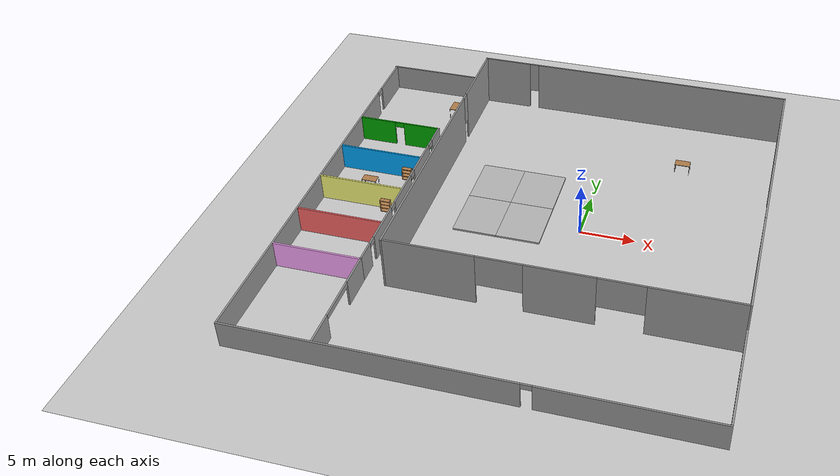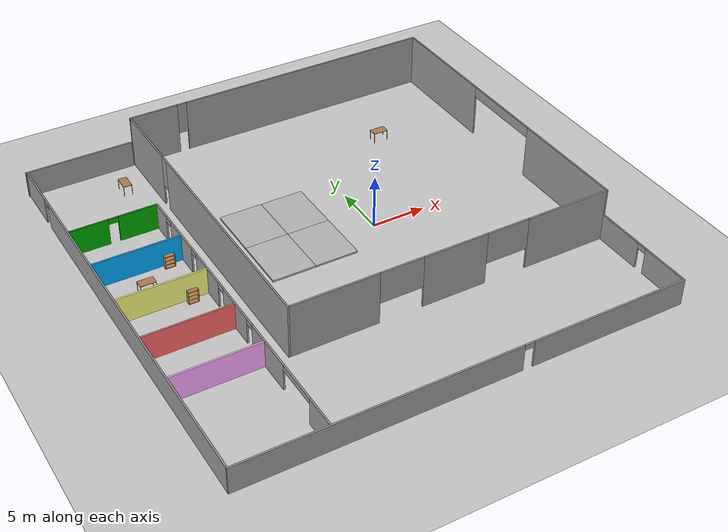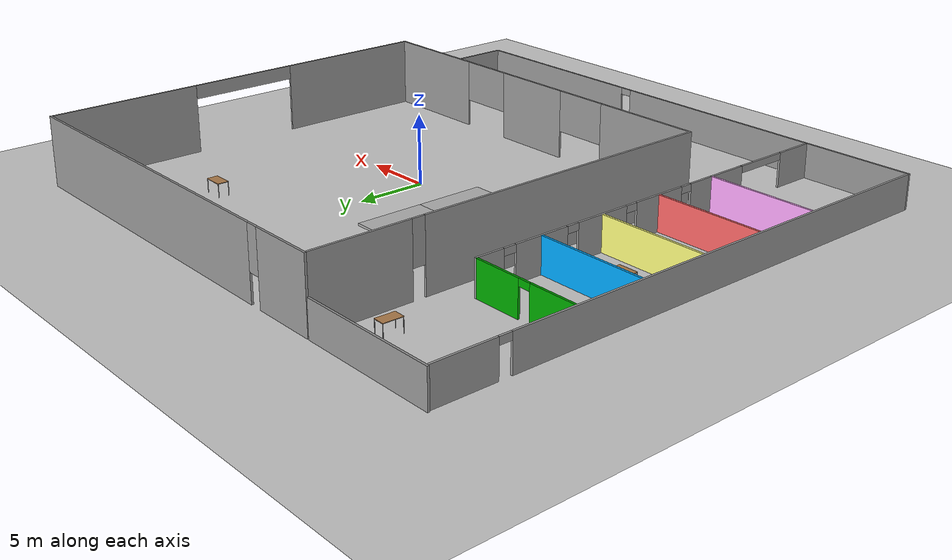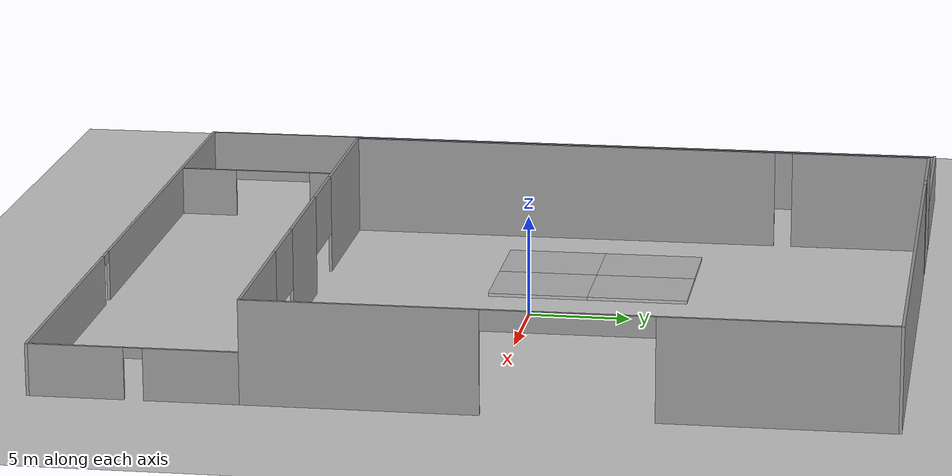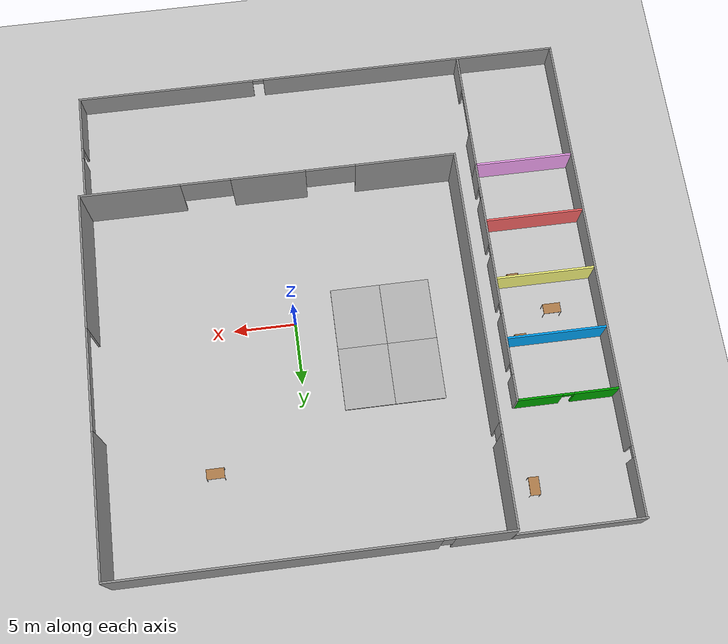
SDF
<sdf version="1.6">
 <world name="default">
  <model name="ground_plane">
   <static>1</static>
   <link name="link">
    <collision name="collision">
     <geometry><plane><normal>0 0 1</normal><size>100 100</size></plane></geometry>
     <surface><friction><ode><mu>100</mu><mu2>50</mu2></ode></friction></surface>
    </collision>
    <visual name="visual">
     <cast_shadows>0</cast_shadows>
     <geometry><plane><normal>0 0 1</normal><size>100 100</size></plane></geometry>
     <material>
      <script><uri>file://media/materials/scripts/gazebo.material</uri><name>Gazebo/Grey</name></script>
     </material>
    </visual>
   </link>
  </model>
  <model name="robotics_lab">
   <pose>-4.24917 -1.0775 0 0 -0 0</pose>
   <link name="Wall_0">
    <pose>5.0405 20 0 0 -0 0</pose>
    <visual name="Wall_0_Visual_0">
     <pose>-12.7625 0 2.5 0 -0 0</pose>
     <geometry><box><size>4.625 0.15 5</size></box></geometry>
     <material>
      <script><uri>file://media/materials/scripts/gazebo.material</uri><name>Gazebo/Grey</name></script>
      <ambient>0 0 0 1</ambient>
     </material>
    </visual>
    <collision name="Wall_0_Collision_0">
     <geometry><box><size>4.625 0.15 5</size></box></geometry>
     <pose>-12.7625 0 2.5 0 -0 0</pose>
    </collision>
    <visual name="Wall_0_Visual_1">
     <pose>2.7625 0 2.5 0 -0 0</pose>
     <geometry><box><size>24.625 0.15 5</size></box></geometry>
     <material>
      <script><uri>file://media/materials/scripts/gazebo.material</uri><name>Gazebo/Grey</name></script>
      <ambient>0 0 0 1</ambient>
     </material>
    </visual>
    <collision name="Wall_0_Collision_1">
     <geometry><box><size>24.625 0.15 5</size></box></geometry>
     <pose>2.7625 0 2.5 0 -0 0</pose>
    </collision>
    <visual name="Wall_0_Visual_2">
     <pose>-10 0 3.5 0 -0 0</pose>
     <geometry><box><size>0.9 0.15 3</size></box></geometry>
     <material>
      <script><uri>file://media/materials/scripts/gazebo.material</uri><name>Gazebo/Grey</name></script>
      <ambient>0 0 0 1</ambient>
     </material>
    </visual>
    <collision name="Wall_0_Collision_2">
     <geometry><box><size>0.9 0.15 3</size></box></geometry>
     <pose>-10 0 3.5 0 -0 0</pose>
    </collision>
   </link>
   <link name="Wall_10">
    <pose>-19.9595 0 0 0 0 -1.5708</pose>
    <visual name="Wall_10_Visual_0">
     <pose>-17.6875 0 1.25 0 -0 0</pose>
     <geometry><box><size>4.475 0.15 2.5</size></box></geometry>
     <material>
      <script><uri>file://media/materials/scripts/gazebo.material</uri><name>Gazebo/Grey</name></script>
      <ambient>1 1 1 1</ambient>
     </material>
    </visual>
    <collision name="Wall_10_Collision_0">
     <geometry><box><size>4.475 0.15 2.5</size></box></geometry>
     <pose>-17.6875 0 1.25 0 -0 0</pose>
    </collision>
    <visual name="Wall_10_Visual_1">
     <pose>2.6875 0 1.25 0 -0 0</pose>
     <geometry><box><size>34.475 0.15 2.5</size></box></geometry>
     <material>
      <script><uri>file://media/materials/scripts/gazebo.material</uri><name>Gazebo/Grey</name></script>
      <ambient>1 1 1 1</ambient>
     </material>
    </visual>
    <collision name="Wall_10_Collision_1">
     <geometry><box><size>34.475 0.15 2.5</size></box></geometry>
     <pose>2.6875 0 1.25 0 -0 0</pose>
    </collision>
    <visual name="Wall_10_Visual_2">
     <pose>-15 0 2.25 0 -0 0</pose>
     <geometry><box><size>0.9 0.15 0.5</size></box></geometry>
     <material>
      <script><uri>file://media/materials/scripts/gazebo.material</uri><name>Gazebo/Grey</name></script>
      <ambient>1 1 1 1</ambient>
     </material>
    </visual>
    <collision name="Wall_10_Collision_2">
     <geometry><box><size>0.9 0.15 0.5</size></box></geometry>
     <pose>-15 0 2.25 0 -0 0</pose>
    </collision>
   </link>
   <link name="Wall_12">
    <pose>0.040499 -20 0 0 -0 0</pose>
    <visual name="Wall_12_Visual_0">
     <pose>-7.7625 0 1.25 0 -0 0</pose>
     <geometry><box><size>24.625 0.15 2.5</size></box></geometry>
     <material>
      <script><uri>file://media/materials/scripts/gazebo.material</uri><name>Gazebo/Grey</name></script>
      <ambient>1 1 1 1</ambient>
     </material>
    </visual>
    <collision name="Wall_12_Collision_0">
     <geometry><box><size>24.625 0.15 2.5</size></box></geometry>
     <pose>-7.7625 0 1.25 0 -0 0</pose>
    </collision>
    <visual name="Wall_12_Visual_1">
     <pose>12.7625 0 1.25 0 -0 0</pose>
     <geometry><box><size>14.625 0.15 2.5</size></box></geometry>
     <material>
      <script><uri>file://media/materials/scripts/gazebo.material</uri><name>Gazebo/Grey</name></script>
      <ambient>1 1 1 1</ambient>
     </material>
    </visual>
    <collision name="Wall_12_Collision_1">
     <geometry><box><size>14.625 0.15 2.5</size></box></geometry>
     <pose>12.7625 0 1.25 0 -0 0</pose>
    </collision>
    <visual name="Wall_12_Visual_2">
     <pose>5 0 2.25 0 -0 0</pose>
     <geometry><box><size>0.9 0.15 0.5</size></box></geometry>
     <material>
      <script><uri>file://media/materials/scripts/gazebo.material</uri><name>Gazebo/Grey</name></script>
      <ambient>1 1 1 1</ambient>
     </material>
    </visual>
    <collision name="Wall_12_Collision_2">
     <geometry><box><size>0.9 0.15 0.5</size></box></geometry>
     <pose>5 0 2.25 0 -0 0</pose>
    </collision>
   </link>
   <link name="Wall_14">
    <pose>20.0405 -15 0 0 0 -1.5708</pose>
    <visual name="Wall_14_Visual_0">
     <pose>-2.6875 0 1.25 0 -0 0</pose>
     <geometry><box><size>4.475 0.15 2.5</size></box></geometry>
     <material>
      <script><uri>file://media/materials/scripts/gazebo.material</uri><name>Gazebo/Grey</name></script>
      <ambient>1 1 1 1</ambient>
     </material>
    </visual>
    <collision name="Wall_14_Collision_0">
     <geometry><box><size>4.475 0.15 2.5</size></box></geometry>
     <pose>-2.6875 0 1.25 0 -0 0</pose>
    </collision>
    <visual name="Wall_14_Visual_1">
     <pose>2.6875 0 1.25 0 -0 0</pose>
     <geometry><box><size>4.475 0.15 2.5</size></box></geometry>
     <material>
      <script><uri>file://media/materials/scripts/gazebo.material</uri><name>Gazebo/Grey</name></script>
      <ambient>1 1 1 1</ambient>
     </material>
    </visual>
    <collision name="Wall_14_Collision_1">
     <geometry><box><size>4.475 0.15 2.5</size></box></geometry>
     <pose>2.6875 0 1.25 0 -0 0</pose>
    </collision>
    <visual name="Wall_14_Visual_2">
     <pose>0 0 2.25 0 -0 0</pose>
     <geometry><box><size>0.9 0.15 0.5</size></box></geometry>
     <material>
      <script><uri>file://media/materials/scripts/gazebo.material</uri><name>Gazebo/Grey</name></script>
      <ambient>1 1 1 1</ambient>
     </material>
    </visual>
    <collision name="Wall_14_Collision_2">
     <geometry><box><size>0.9 0.15 0.5</size></box></geometry>
     <pose>0 0 2.25 0 -0 0</pose>
    </collision>
   </link>
   <link name="Wall_16">
    <pose>-15.9595 10 0 0 -0 0</pose>
    <visual name="Wall_16_Visual_0">
     <pose>-2.1875 0 1.25 0 -0 0</pose>
     <geometry><box><size>3.475 0.15 2.5</size></box></geometry>
     <material>
      <script><uri>file://media/materials/scripts/gazebo.material</uri><name>Gazebo/Grey</name></script>
      <ambient>0 0.666667 0 1</ambient>
     </material>
    </visual>
    <collision name="Wall_16_Collision_0">
     <geometry><box><size>3.475 0.15 2.5</size></box></geometry>
     <pose>-2.1875 0 1.25 0 -0 0</pose>
    </collision>
    <visual name="Wall_16_Visual_1">
     <pose>2.1875 0 1.25 0 -0 0</pose>
     <geometry><box><size>3.475 0.15 2.5</size></box></geometry>
     <material>
      <script><uri>file://media/materials/scripts/gazebo.material</uri><name>Gazebo/Grey</name></script>
      <ambient>0 0.666667 0 1</ambient>
     </material>
    </visual>
    <collision name="Wall_16_Collision_1">
     <geometry><box><size>3.475 0.15 2.5</size></box></geometry>
     <pose>2.1875 0 1.25 0 -0 0</pose>
    </collision>
    <visual name="Wall_16_Visual_2">
     <pose>-0 0 2.25 0 -0 0</pose>
     <geometry><box><size>0.9 0.15 0.5</size></box></geometry>
     <material>
      <script><uri>file://media/materials/scripts/gazebo.material</uri><name>Gazebo/Grey</name></script>
      <ambient>0 0.666667 0 1</ambient>
     </material>
    </visual>
    <collision name="Wall_16_Collision_2">
     <geometry><box><size>0.9 0.15 0.5</size></box></geometry>
     <pose>-0 0 2.25 0 -0 0</pose>
    </collision>
   </link>
   <link name="Wall_18">
    <collision name="Wall_18_Collision">
     <geometry><box><size>7.85 0.15 2.5</size></box></geometry>
     <pose>0 0 1.25 0 -0 0</pose>
    </collision>
    <visual name="Wall_18_Visual">
     <pose>0 0 1.25 0 -0 0</pose>
     <geometry><box><size>7.85 0.15 2.5</size></box></geometry>
     <material>
      <script><uri>file://media/materials/scripts/gazebo.material</uri><name>Gazebo/Grey</name></script>
      <ambient>0 0.666667 1 1</ambient>
     </material>
    </visual>
    <pose>-15.9595 5 0 0 -0 0</pose>
   </link>
   <link name="Wall_2">
    <pose>20.0405 4.925 0 0 0 -1.5708</pose>
    <visual name="Wall_2_Visual_0">
     <pose>-9.5375 0 2.5 0 -0 0</pose>
     <geometry><box><size>10.925 0.15 5</size></box></geometry>
     <material>
      <script><uri>file://media/materials/scripts/gazebo.material</uri><name>Gazebo/Grey</name></script>
      <ambient>0 0 0 1</ambient>
     </material>
    </visual>
    <collision name="Wall_2_Collision_0">
     <geometry><box><size>10.925 0.15 5</size></box></geometry>
     <pose>-9.5375 0 2.5 0 -0 0</pose>
    </collision>
    <visual name="Wall_2_Visual_1">
     <pose>9.4625 0 2.5 0 -0 0</pose>
     <geometry><box><size>11.075 0.15 5</size></box></geometry>
     <material>
      <script><uri>file://media/materials/scripts/gazebo.material</uri><name>Gazebo/Grey</name></script>
      <ambient>0 0 0 1</ambient>
     </material>
    </visual>
    <collision name="Wall_2_Collision_1">
     <geometry><box><size>11.075 0.15 5</size></box></geometry>
     <pose>9.4625 0 2.5 0 -0 0</pose>
    </collision>
    <visual name="Wall_2_Visual_2">
     <pose>-0.075 0 4.5 0 -0 0</pose>
     <geometry><box><size>8 0.15 1</size></box></geometry>
     <material>
      <script><uri>file://media/materials/scripts/gazebo.material</uri><name>Gazebo/Grey</name></script>
      <ambient>0 0 0 1</ambient>
     </material>
    </visual>
    <collision name="Wall_2_Collision_2">
     <geometry><box><size>8 0.15 1</size></box></geometry>
     <pose>-0.075 0 4.5 0 -0 0</pose>
    </collision>
   </link>
   <link name="Wall_20">
    <collision name="Wall_20_Collision">
     <geometry><box><size>7.85 0.15 2.5</size></box></geometry>
     <pose>0 0 1.25 0 -0 0</pose>
    </collision>
    <visual name="Wall_20_Visual">
     <pose>0 0 1.25 0 -0 0</pose>
     <geometry><box><size>7.85 0.15 2.5</size></box></geometry>
     <material>
      <script><uri>file://media/materials/scripts/gazebo.material</uri><name>Gazebo/Grey</name></script>
      <ambient>1 1 0.498039 1</ambient>
     </material>
    </visual>
    <pose>-15.9595 0 0 0 -0 0</pose>
   </link>
   <link name="Wall_22">
    <collision name="Wall_22_Collision">
     <geometry><box><size>7.85 0.15 2.5</size></box></geometry>
     <pose>0 0 1.25 0 -0 0</pose>
    </collision>
    <visual name="Wall_22_Visual">
     <pose>0 0 1.25 0 -0 0</pose>
     <geometry><box><size>7.85 0.15 2.5</size></box></geometry>
     <material>
      <script><uri>file://media/materials/scripts/gazebo.material</uri><name>Gazebo/Grey</name></script>
      <ambient>1 0.411765 0.411765 1</ambient>
     </material>
    </visual>
    <pose>-15.9595 -5 0 0 -0 0</pose>
   </link>
   <link name="Wall_24">
    <collision name="Wall_24_Collision">
     <geometry><box><size>7.85 0.15 2.5</size></box></geometry>
     <pose>0 0 1.25 0 -0 0</pose>
    </collision>
    <visual name="Wall_24_Visual">
     <pose>0 0 1.25 0 -0 0</pose>
     <geometry><box><size>7.85 0.15 2.5</size></box></geometry>
     <material>
      <script><uri>file://media/materials/scripts/gazebo.material</uri><name>Gazebo/Grey</name></script>
      <ambient>1 0.666667 1 1</ambient>
     </material>
    </visual>
    <pose>-15.9595 -10 0 0 -0 0</pose>
   </link>
   <link name="Wall_26">
    <pose>-11.9595 0 0 0 0 -1.5708</pose>
    <visual name="Wall_26_Visual_0">
     <pose>-9.0125 0 1.25 0 -0 0</pose>
     <geometry><box><size>2.125 0.15 2.5</size></box></geometry>
     <material>
      <script><uri>file://media/materials/scripts/gazebo.material</uri><name>Gazebo/Grey</name></script>
      <ambient>1 1 1 1</ambient>
     </material>
    </visual>
    <collision name="Wall_26_Collision_0">
     <geometry><box><size>2.125 0.15 2.5</size></box></geometry>
     <pose>-9.0125 0 1.25 0 -0 0</pose>
    </collision>
    <visual name="Wall_26_Visual_1">
     <pose>-5 0 1.25 0 -0 0</pose>
     <geometry><box><size>4.1 0.15 2.5</size></box></geometry>
     <material>
      <script><uri>file://media/materials/scripts/gazebo.material</uri><name>Gazebo/Grey</name></script>
      <ambient>1 1 1 1</ambient>
     </material>
    </visual>
    <collision name="Wall_26_Collision_1">
     <geometry><box><size>4.1 0.15 2.5</size></box></geometry>
     <pose>-5 0 1.25 0 -0 0</pose>
    </collision>
    <visual name="Wall_26_Visual_2">
     <pose>0 0 1.25 0 -0 0</pose>
     <geometry><box><size>4.1 0.15 2.5</size></box></geometry>
     <material>
      <script><uri>file://media/materials/scripts/gazebo.material</uri><name>Gazebo/Grey</name></script>
      <ambient>1 1 1 1</ambient>
     </material>
    </visual>
    <collision name="Wall_26_Collision_2">
     <geometry><box><size>4.1 0.15 2.5</size></box></geometry>
     <pose>0 0 1.25 0 -0 0</pose>
    </collision>
    <visual name="Wall_26_Visual_3">
     <pose>5 0 1.25 0 -0 0</pose>
     <geometry><box><size>4.1 0.15 2.5</size></box></geometry>
     <material>
      <script><uri>file://media/materials/scripts/gazebo.material</uri><name>Gazebo/Grey</name></script>
      <ambient>1 1 1 1</ambient>
     </material>
    </visual>
    <collision name="Wall_26_Collision_3">
     <geometry><box><size>4.1 0.15 2.5</size></box></geometry>
     <pose>5 0 1.25 0 -0 0</pose>
    </collision>
    <visual name="Wall_26_Visual_4">
     <pose>9.0125 0 1.25 0 -0 0</pose>
     <geometry><box><size>2.125 0.15 2.5</size></box></geometry>
     <material>
      <script><uri>file://media/materials/scripts/gazebo.material</uri><name>Gazebo/Grey</name></script>
      <ambient>1 1 1 1</ambient>
     </material>
    </visual>
    <collision name="Wall_26_Collision_4">
     <geometry><box><size>2.125 0.15 2.5</size></box></geometry>
     <pose>9.0125 0 1.25 0 -0 0</pose>
    </collision>
    <visual name="Wall_26_Visual_5">
     <pose>-7.5 0 2.25 0 -0 0</pose>
     <geometry><box><size>0.9 0.15 0.5</size></box></geometry>
     <material>
      <script><uri>file://media/materials/scripts/gazebo.material</uri><name>Gazebo/Grey</name></script>
      <ambient>1 1 1 1</ambient>
     </material>
    </visual>
    <collision name="Wall_26_Collision_5">
     <geometry><box><size>0.9 0.15 0.5</size></box></geometry>
     <pose>-7.5 0 2.25 0 -0 0</pose>
    </collision>
    <visual name="Wall_26_Visual_6">
     <pose>-2.5 0 2.25 0 -0 0</pose>
     <geometry><box><size>0.9 0.15 0.5</size></box></geometry>
     <material>
      <script><uri>file://media/materials/scripts/gazebo.material</uri><name>Gazebo/Grey</name></script>
      <ambient>1 1 1 1</ambient>
     </material>
    </visual>
    <collision name="Wall_26_Collision_6">
     <geometry><box><size>0.9 0.15 0.5</size></box></geometry>
     <pose>-2.5 0 2.25 0 -0 0</pose>
    </collision>
    <visual name="Wall_26_Visual_7">
     <pose>2.5 0 2.25 0 -0 0</pose>
     <geometry><box><size>0.9 0.15 0.5</size></box></geometry>
     <material>
      <script><uri>file://media/materials/scripts/gazebo.material</uri><name>Gazebo/Grey</name></script>
      <ambient>1 1 1 1</ambient>
     </material>
    </visual>
    <collision name="Wall_26_Collision_7">
     <geometry><box><size>0.9 0.15 0.5</size></box></geometry>
     <pose>2.5 0 2.25 0 -0 0</pose>
    </collision>
    <visual name="Wall_26_Visual_8">
     <pose>7.5 0 2.25 0 -0 0</pose>
     <geometry><box><size>0.9 0.15 0.5</size></box></geometry>
     <material>
      <script><uri>file://media/materials/scripts/gazebo.material</uri><name>Gazebo/Grey</name></script>
      <ambient>1 1 1 1</ambient>
     </material>
    </visual>
    <collision name="Wall_26_Collision_8">
     <geometry><box><size>0.9 0.15 0.5</size></box></geometry>
     <pose>7.5 0 2.25 0 -0 0</pose>
    </collision>
   </link>
   <link name="Wall_30">
    <pose>-11.9595 -14.925 0 0 0 -1.5708</pose>
    <visual name="Wall_30_Visual_0">
     <pose>-3.4625 0 1.25 0 -0 0</pose>
     <geometry><box><size>3.075 0.15 2.5</size></box></geometry>
     <material>
      <script><uri>file://media/materials/scripts/gazebo.material</uri><name>Gazebo/Grey</name></script>
      <ambient>1 1 1 1</ambient>
     </material>
    </visual>
    <collision name="Wall_30_Collision_0">
     <geometry><box><size>3.075 0.15 2.5</size></box></geometry>
     <pose>-3.4625 0 1.25 0 -0 0</pose>
    </collision>
    <visual name="Wall_30_Visual_1">
     <pose>3.5375 0 1.25 0 -0 0</pose>
     <geometry><box><size>2.925 0.15 2.5</size></box></geometry>
     <material>
      <script><uri>file://media/materials/scripts/gazebo.material</uri><name>Gazebo/Grey</name></script>
      <ambient>1 1 1 1</ambient>
     </material>
    </visual>
    <collision name="Wall_30_Collision_1">
     <geometry><box><size>2.925 0.15 2.5</size></box></geometry>
     <pose>3.5375 0 1.25 0 -0 0</pose>
    </collision>
    <visual name="Wall_30_Visual_2">
     <pose>0.075 0 2.25 0 -0 0</pose>
     <geometry><box><size>4 0.15 0.5</size></box></geometry>
     <material>
      <script><uri>file://media/materials/scripts/gazebo.material</uri><name>Gazebo/Grey</name></script>
      <ambient>1 1 1 1</ambient>
     </material>
    </visual>
    <collision name="Wall_30_Collision_2">
     <geometry><box><size>4 0.15 0.5</size></box></geometry>
     <pose>0.075 0 2.25 0 -0 0</pose>
    </collision>
   </link>
   <link name="Wall_4">
    <pose>5.0405 -10 0 0 -0 0</pose>
    <visual name="Wall_4_Visual_0">
     <pose>-10.9625 0 2.5 0 -0 0</pose>
     <geometry><box><size>7.925 0.15 5</size></box></geometry>
     <material>
      <script><uri>file://media/materials/scripts/gazebo.material</uri><name>Gazebo/Grey</name></script>
      <ambient>0 0 0 1</ambient>
     </material>
    </visual>
    <collision name="Wall_4_Collision_0">
     <geometry><box><size>7.925 0.15 5</size></box></geometry>
     <pose>-10.9625 0 2.5 0 -0 0</pose>
    </collision>
    <visual name="Wall_4_Visual_1">
     <pose>0 0 2.5 0 -0 0</pose>
     <geometry><box><size>6 0.15 5</size></box></geometry>
     <material>
      <script><uri>file://media/materials/scripts/gazebo.material</uri><name>Gazebo/Grey</name></script>
      <ambient>0 0 0 1</ambient>
     </material>
    </visual>
    <collision name="Wall_4_Collision_1">
     <geometry><box><size>6 0.15 5</size></box></geometry>
     <pose>0 0 2.5 0 -0 0</pose>
    </collision>
    <visual name="Wall_4_Visual_2">
     <pose>10.9625 0 2.5 0 -0 0</pose>
     <geometry><box><size>7.925 0.15 5</size></box></geometry>
     <material>
      <script><uri>file://media/materials/scripts/gazebo.material</uri><name>Gazebo/Grey</name></script>
      <ambient>0 0 0 1</ambient>
     </material>
    </visual>
    <collision name="Wall_4_Collision_2">
     <geometry><box><size>7.925 0.15 5</size></box></geometry>
     <pose>10.9625 0 2.5 0 -0 0</pose>
    </collision>
    <visual name="Wall_4_Visual_3">
     <pose>-5 0 3.5 0 -0 0</pose>
     <geometry><box><size>4 0.15 3</size></box></geometry>
     <material>
      <script><uri>file://media/materials/scripts/gazebo.material</uri><name>Gazebo/Grey</name></script>
      <ambient>0 0 0 1</ambient>
     </material>
    </visual>
    <collision name="Wall_4_Collision_3">
     <geometry><box><size>4 0.15 3</size></box></geometry>
     <pose>-5 0 3.5 0 -0 0</pose>
    </collision>
    <visual name="Wall_4_Visual_4">
     <pose>5 0 3.5 0 -0 0</pose>
     <geometry><box><size>4 0.15 3</size></box></geometry>
     <material>
      <script><uri>file://media/materials/scripts/gazebo.material</uri><name>Gazebo/Grey</name></script>
      <ambient>0 0 0 1</ambient>
     </material>
    </visual>
    <collision name="Wall_4_Collision_4">
     <geometry><box><size>4 0.15 3</size></box></geometry>
     <pose>5 0 3.5 0 -0 0</pose>
    </collision>
   </link>
   <link name="Wall_6">
    <pose>-9.9595 4.925 0 0 0 -1.5708</pose>
    <visual name="Wall_6_Visual_0">
     <pose>-11.5125 0 2.5 0 -0 0</pose>
     <geometry><box><size>6.975 0.15 5</size></box></geometry>
     <material>
      <script><uri>file://media/materials/scripts/gazebo.material</uri><name>Gazebo/Grey</name></script>
      <ambient>0 0 0 1</ambient>
     </material>
    </visual>
    <collision name="Wall_6_Collision_0">
     <geometry><box><size>6.975 0.15 5</size></box></geometry>
     <pose>-11.5125 0 2.5 0 -0 0</pose>
    </collision>
    <visual name="Wall_6_Visual_1">
     <pose>3.9375 0 2.5 0 -0 0</pose>
     <geometry><box><size>22.125 0.15 5</size></box></geometry>
     <material>
      <script><uri>file://media/materials/scripts/gazebo.material</uri><name>Gazebo/Grey</name></script>
      <ambient>0 0 0 1</ambient>
     </material>
    </visual>
    <collision name="Wall_6_Collision_1">
     <geometry><box><size>22.125 0.15 5</size></box></geometry>
     <pose>3.9375 0 2.5 0 -0 0</pose>
    </collision>
    <visual name="Wall_6_Visual_2">
     <pose>-7.575 0 3.5 0 -0 0</pose>
     <geometry><box><size>0.9 0.15 3</size></box></geometry>
     <material>
      <script><uri>file://media/materials/scripts/gazebo.material</uri><name>Gazebo/Grey</name></script>
      <ambient>0 0 0 1</ambient>
     </material>
    </visual>
    <collision name="Wall_6_Collision_2">
     <geometry><box><size>0.9 0.15 3</size></box></geometry>
     <pose>-7.575 0 3.5 0 -0 0</pose>
    </collision>
   </link>
   <link name="Wall_8">
    <collision name="Wall_8_Collision">
     <geometry><box><size>10 0.15 2.5</size></box></geometry>
     <pose>0 0 1.25 0 -0 0</pose>
    </collision>
    <visual name="Wall_8_Visual">
     <pose>0 0 1.25 0 -0 0</pose>
     <geometry><box><size>10 0.15 2.5</size></box></geometry>
     <material>
      <script><uri>file://media/materials/scripts/gazebo.material</uri><name>Gazebo/Grey</name></script>
      <ambient>1 1 1 1</ambient>
     </material>
    </visual>
    <pose>-15.1155 20 0 0 -0 0</pose>
   </link>
   <static>1</static>
  </model>
  <model name="bookshelf">
   <static>1</static>
   <link name="link">
    <inertial><mass>1</mass></inertial>
    <collision name="back">
     <pose>0 0.005 0.6 0 -0 0</pose>
     <geometry><box><size>0.9 0.01 1.2</size></box></geometry>
    </collision>
    <visual name="visual1">
     <pose>0 0.005 0.6 0 -0 0</pose>
     <geometry><box><size>0.9 0.01 1.2</size></box></geometry>
     <material>
      <script><uri>file://media/materials/scripts/gazebo.material</uri><name>Gazebo/Wood</name></script>
     </material>
    </visual>
    <collision name="left_side">
     <pose>0.45 -0.195 0.6 0 -0 0</pose>
     <geometry><box><size>0.02 0.4 1.2</size></box></geometry>
    </collision>
    <visual name="visual2">
     <pose>0.45 -0.195 0.6 0 -0 0</pose>
     <geometry><box><size>0.02 0.4 1.2</size></box></geometry>
     <material>
      <script><uri>file://media/materials/scripts/gazebo.material</uri><name>Gazebo/Wood</name></script>
     </material>
    </visual>
    <collision name="right_side">
     <pose>-0.45 -0.195 0.6 0 -0 0</pose>
     <geometry><box><size>0.02 0.4 1.2</size></box></geometry>
    </collision>
    <visual name="visual3">
     <pose>-0.45 -0.195 0.6 0 -0 0</pose>
     <geometry><box><size>0.02 0.4 1.2</size></box></geometry>
     <material>
      <script><uri>file://media/materials/scripts/gazebo.material</uri><name>Gazebo/Wood</name></script>
     </material>
    </visual>
    <collision name="bottom">
     <pose>0 -0.195 0.03 0 -0 0</pose>
     <geometry><box><size>0.88 0.4 0.06</size></box></geometry>
    </collision>
    <visual name="visual4">
     <pose>0 -0.195 0.03 0 -0 0</pose>
     <geometry><box><size>0.88 0.4 0.06</size></box></geometry>
     <material>
      <script><uri>file://media/materials/scripts/gazebo.material</uri><name>Gazebo/Wood</name></script>
     </material>
    </visual>
    <collision name="top">
     <pose>0 -0.195 1.19 0 -0 0</pose>
     <geometry><box><size>0.88 0.4 0.02</size></box></geometry>
    </collision>
    <visual name="visual5">
     <pose>0 -0.195 1.19 0 -0 0</pose>
     <geometry><box><size>0.88 0.4 0.02</size></box></geometry>
     <material>
      <script><uri>file://media/materials/scripts/gazebo.material</uri><name>Gazebo/Wood</name></script>
     </material>
    </visual>
    <collision name="low_shelf">
     <pose>0 -0.195 0.43 0 -0 0</pose>
     <geometry><box><size>0.88 0.4 0.02</size></box></geometry>
    </collision>
    <visual name="visual6">
     <pose>0 -0.195 0.43 0 -0 0</pose>
     <geometry><box><size>0.88 0.4 0.02</size></box></geometry>
     <material>
      <script><uri>file://media/materials/scripts/gazebo.material</uri><name>Gazebo/Wood</name></script>
     </material>
    </visual>
    <collision name="high_shelf">
     <pose>0 -0.195 0.8 0 -0 0</pose>
     <geometry><box><size>0.88 0.4 0.02</size></box></geometry>
    </collision>
    <visual name="visual7">
     <pose>0 -0.195 0.8 0 -0 0</pose>
     <geometry><box><size>0.88 0.4 0.02</size></box></geometry>
     <material>
      <script><uri>file://media/materials/scripts/gazebo.material</uri><name>Gazebo/Wood</name></script>
     </material>
    </visual>
   </link>
   <pose>-17.5864 3.74248 0 0 -0 0</pose>
  </model>
  <model name="table_clone">
   <static>0</static>
   <link name="link">
    <collision name="surface">
     <pose>0 0 1 0 -0 0</pose>
     <geometry><box><size>1.5 0.8 0.03</size></box></geometry>
     <surface><friction><ode><mu>0.6</mu><mu2>0.6</mu2></ode></friction></surface>
    </collision>
    <visual name="visual1">
     <pose>0 0 1 0 -0 0</pose>
     <geometry><box><size>1.4 0.8 0.04</size></box></geometry>
     <material>
      <script><uri>file://media/materials/scripts/gazebo.material</uri><name>Gazebo/Wood</name></script>
     </material>
    </visual>
    <collision name="front_left_leg">
     <pose>0.68 0.38 0.5 0 -0 0</pose>
     <geometry><cylinder><radius>0.02</radius><length>1</length></cylinder></geometry>
    </collision>
    <visual name="front_left_leg">
     <pose>0.68 0.38 0.5 0 -0 0</pose>
     <geometry><cylinder><radius>0.02</radius><length>1</length></cylinder></geometry>
     <material>
      <script><uri>file://media/materials/scripts/gazebo.material</uri><name>Gazebo/Grey</name></script>
     </material>
    </visual>
    <collision name="front_right_leg">
     <pose>0.68 -0.38 0.5 0 -0 0</pose>
     <geometry><cylinder><radius>0.02</radius><length>1</length></cylinder></geometry>
    </collision>
    <visual name="front_right_leg">
     <pose>0.68 -0.38 0.5 0 -0 0</pose>
     <geometry><cylinder><radius>0.02</radius><length>1</length></cylinder></geometry>
     <material>
      <script><uri>file://media/materials/scripts/gazebo.material</uri><name>Gazebo/Grey</name></script>
     </material>
    </visual>
    <collision name="back_right_leg">
     <pose>-0.68 -0.38 0.5 0 -0 0</pose>
     <geometry><cylinder><radius>0.02</radius><length>1</length></cylinder></geometry>
    </collision>
    <visual name="back_right_leg">
     <pose>-0.68 -0.38 0.5 0 -0 0</pose>
     <geometry><cylinder><radius>0.02</radius><length>1</length></cylinder></geometry>
     <material>
      <script><uri>file://media/materials/scripts/gazebo.material</uri><name>Gazebo/Grey</name></script>
     </material>
    </visual>
    <collision name="back_left_leg">
     <pose>-0.68 0.38 0.5 0 -0 0</pose>
     <geometry><cylinder><radius>0.02</radius><length>1</length></cylinder></geometry>
    </collision>
    <visual name="back_left_leg">
     <pose>-0.68 0.38 0.5 0 -0 0</pose>
     <geometry><cylinder><radius>0.02</radius><length>1</length></cylinder></geometry>
     <material>
      <script><uri>file://media/materials/scripts/gazebo.material</uri><name>Gazebo/Grey</name></script>
     </material>
    </visual>
    <inertial>
     <inertia><ixx>1</ixx><ixy>0</ixy><ixz>0</ixz><iyy>1</iyy><iyz>0</iyz><izz>1</izz></inertia>
     <mass>1</mass>
    </inertial>
   </link>
   <pose>-20.4894 1.48775 -8e-06 0 -0 0</pose>
  </model>
  <model name="bookshelf_clone">
   <static>1</static>
   <link name="link">
    <inertial><mass>1</mass></inertial>
    <collision name="back">
     <pose>0 0.005 0.6 0 -0 0</pose>
     <geometry><box><size>0.9 0.01 1.2</size></box></geometry>
    </collision>
    <visual name="visual1">
     <pose>0 0.005 0.6 0 -0 0</pose>
     <geometry><box><size>0.9 0.01 1.2</size></box></geometry>
     <material>
      <script><uri>file://media/materials/scripts/gazebo.material</uri><name>Gazebo/Wood</name></script>
     </material>
    </visual>
    <collision name="left_side">
     <pose>0.45 -0.195 0.6 0 -0 0</pose>
     <geometry><box><size>0.02 0.4 1.2</size></box></geometry>
    </collision>
    <visual name="visual2">
     <pose>0.45 -0.195 0.6 0 -0 0</pose>
     <geometry><box><size>0.02 0.4 1.2</size></box></geometry>
     <material>
      <script><uri>file://media/materials/scripts/gazebo.material</uri><name>Gazebo/Wood</name></script>
     </material>
    </visual>
    <collision name="right_side">
     <pose>-0.45 -0.195 0.6 0 -0 0</pose>
     <geometry><box><size>0.02 0.4 1.2</size></box></geometry>
    </collision>
    <visual name="visual3">
     <pose>-0.45 -0.195 0.6 0 -0 0</pose>
     <geometry><box><size>0.02 0.4 1.2</size></box></geometry>
     <material>
      <script><uri>file://media/materials/scripts/gazebo.material</uri><name>Gazebo/Wood</name></script>
     </material>
    </visual>
    <collision name="bottom">
     <pose>0 -0.195 0.03 0 -0 0</pose>
     <geometry><box><size>0.88 0.4 0.06</size></box></geometry>
    </collision>
    <visual name="visual4">
     <pose>0 -0.195 0.03 0 -0 0</pose>
     <geometry><box><size>0.88 0.4 0.06</size></box></geometry>
     <material>
      <script><uri>file://media/materials/scripts/gazebo.material</uri><name>Gazebo/Wood</name></script>
     </material>
    </visual>
    <collision name="top">
     <pose>0 -0.195 1.19 0 -0 0</pose>
     <geometry><box><size>0.88 0.4 0.02</size></box></geometry>
    </collision>
    <visual name="visual5">
     <pose>0 -0.195 1.19 0 -0 0</pose>
     <geometry><box><size>0.88 0.4 0.02</size></box></geometry>
     <material>
      <script><uri>file://media/materials/scripts/gazebo.material</uri><name>Gazebo/Wood</name></script>
     </material>
    </visual>
    <collision name="low_shelf">
     <pose>0 -0.195 0.43 0 -0 0</pose>
     <geometry><box><size>0.88 0.4 0.02</size></box></geometry>
    </collision>
    <visual name="visual6">
     <pose>0 -0.195 0.43 0 -0 0</pose>
     <geometry><box><size>0.88 0.4 0.02</size></box></geometry>
     <material>
      <script><uri>file://media/materials/scripts/gazebo.material</uri><name>Gazebo/Wood</name></script>
     </material>
    </visual>
    <collision name="high_shelf">
     <pose>0 -0.195 0.8 0 -0 0</pose>
     <geometry><box><size>0.88 0.4 0.02</size></box></geometry>
    </collision>
    <visual name="visual7">
     <pose>0 -0.195 0.8 0 -0 0</pose>
     <geometry><box><size>0.88 0.4 0.02</size></box></geometry>
     <material>
      <script><uri>file://media/materials/scripts/gazebo.material</uri><name>Gazebo/Wood</name></script>
     </material>
    </visual>
   </link>
   <pose>-17.8107 -1.34235 0 0 -0 0</pose>
  </model>
  <model name="table_clone_clone_0">
   <static>0</static>
   <link name="link">
    <collision name="surface">
     <pose>0 0 1 0 -0 0</pose>
     <geometry><box><size>1.5 0.8 0.03</size></box></geometry>
     <surface><friction><ode><mu>0.6</mu><mu2>0.6</mu2></ode></friction></surface>
    </collision>
    <visual name="visual1">
     <pose>0 0 1 0 -0 0</pose>
     <geometry><box><size>1.4 0.8 0.04</size></box></geometry>
     <material>
      <script><uri>file://media/materials/scripts/gazebo.material</uri><name>Gazebo/Wood</name></script>
     </material>
    </visual>
    <collision name="front_left_leg">
     <pose>0.68 0.38 0.5 0 -0 0</pose>
     <geometry><cylinder><radius>0.02</radius><length>1</length></cylinder></geometry>
    </collision>
    <visual name="front_left_leg">
     <pose>0.68 0.38 0.5 0 -0 0</pose>
     <geometry><cylinder><radius>0.02</radius><length>1</length></cylinder></geometry>
     <material>
      <script><uri>file://media/materials/scripts/gazebo.material</uri><name>Gazebo/Grey</name></script>
     </material>
    </visual>
    <collision name="front_right_leg">
     <pose>0.68 -0.38 0.5 0 -0 0</pose>
     <geometry><cylinder><radius>0.02</radius><length>1</length></cylinder></geometry>
    </collision>
    <visual name="front_right_leg">
     <pose>0.68 -0.38 0.5 0 -0 0</pose>
     <geometry><cylinder><radius>0.02</radius><length>1</length></cylinder></geometry>
     <material>
      <script><uri>file://media/materials/scripts/gazebo.material</uri><name>Gazebo/Grey</name></script>
     </material>
    </visual>
    <collision name="back_right_leg">
     <pose>-0.68 -0.38 0.5 0 -0 0</pose>
     <geometry><cylinder><radius>0.02</radius><length>1</length></cylinder></geometry>
    </collision>
    <visual name="back_right_leg">
     <pose>-0.68 -0.38 0.5 0 -0 0</pose>
     <geometry><cylinder><radius>0.02</radius><length>1</length></cylinder></geometry>
     <material>
      <script><uri>file://media/materials/scripts/gazebo.material</uri><name>Gazebo/Grey</name></script>
     </material>
    </visual>
    <collision name="back_left_leg">
     <pose>-0.68 0.38 0.5 0 -0 0</pose>
     <geometry><cylinder><radius>0.02</radius><length>1</length></cylinder></geometry>
    </collision>
    <visual name="back_left_leg">
     <pose>-0.68 0.38 0.5 0 -0 0</pose>
     <geometry><cylinder><radius>0.02</radius><length>1</length></cylinder></geometry>
     <material>
      <script><uri>file://media/materials/scripts/gazebo.material</uri><name>Gazebo/Grey</name></script>
     </material>
    </visual>
    <inertial>
     <inertia><ixx>1</ixx><ixy>0</ixy><ixz>0</ixz><iyy>1</iyy><iyz>0</iyz><izz>1</izz></inertia>
     <mass>1</mass>
    </inertial>
   </link>
   <pose>-16.6219 15.3658 -4e-06 0 0 -1.59647</pose>
  </model>
  <model name="mud_box">
   <static>1</static>
   <link name="link">
    <collision name="collision"><geometry><box><size>8 10 0.2</size></box></geometry></collision>
    <visual name="visual_1">
     <pose>-2 2.5 0 0 -0 0</pose>
     <cast_shadows>0</cast_shadows>
     <geometry><box><size>4 5 0.2</size></box></geometry>
     <material>
      <script>
       <uri>model://mud_box/materials/scripts</uri>
       <uri>model://mud_box/materials/textures</uri>
       <name>vrc/mud</name>
      </script>
     </material>
    </visual>
    <visual name="visual_2">
     <pose>2 2.5 0 0 -0 0</pose>
     <cast_shadows>0</cast_shadows>
     <geometry><box><size>4 5 0.2</size></box></geometry>
     <material>
      <script>
       <uri>model://mud_box/materials/scripts</uri>
       <uri>model://mud_box/materials/textures</uri>
       <name>vrc/mud</name>
      </script>
     </material>
    </visual>
    <visual name="visual_3">
     <pose>2 -2.5 0 0 -0 0</pose>
     <cast_shadows>0</cast_shadows>
     <geometry><box><size>4 5 0.2</size></box></geometry>
     <material>
      <script>
       <uri>model://mud_box/materials/scripts</uri>
       <uri>model://mud_box/materials/textures</uri>
       <name>vrc/mud</name>
      </script>
     </material>
    </visual>
    <visual name="visual_4">
     <pose>-2 -2.5 0 0 -0 0</pose>
     <cast_shadows>0</cast_shadows>
     <geometry><box><size>4 5 0.2</size></box></geometry>
     <material>
      <script>
       <uri>model://mud_box/materials/scripts</uri>
       <uri>model://mud_box/materials/textures</uri>
       <name>vrc/mud</name>
      </script>
     </material>
    </visual>
   </link>
   <pose>-7.10346 2.51197 0 0 -0 0</pose>
  </model>
  <model name="table_clone_10_clone_0">
   <static>0</static>
   <link name="link">
    <collision name="surface">
     <pose>0 0 1 0 -0 0</pose>
     <geometry><box><size>1.5 0.8 0.03</size></box></geometry>
     <surface><friction><ode><mu>0.6</mu><mu2>0.6</mu2></ode></friction></surface>
    </collision>
    <visual name="visual1">
     <pose>0 0 1 0 -0 0</pose>
     <geometry><box><size>1.4 0.8 0.04</size></box></geometry>
     <material>
      <script><uri>file://media/materials/scripts/gazebo.material</uri><name>Gazebo/Wood</name></script>
     </material>
    </visual>
    <collision name="front_left_leg">
     <pose>0.68 0.38 0.5 0 -0 0</pose>
     <geometry><cylinder><radius>0.02</radius><length>1</length></cylinder></geometry>
    </collision>
    <visual name="front_left_leg">
     <pose>0.68 0.38 0.5 0 -0 0</pose>
     <geometry><cylinder><radius>0.02</radius><length>1</length></cylinder></geometry>
     <material>
      <script><uri>file://media/materials/scripts/gazebo.material</uri><name>Gazebo/Grey</name></script>
     </material>
    </visual>
    <collision name="front_right_leg">
     <pose>0.68 -0.38 0.5 0 -0 0</pose>
     <geometry><cylinder><radius>0.02</radius><length>1</length></cylinder></geometry>
    </collision>
    <visual name="front_right_leg">
     <pose>0.68 -0.38 0.5 0 -0 0</pose>
     <geometry><cylinder><radius>0.02</radius><length>1</length></cylinder></geometry>
     <material>
      <script><uri>file://media/materials/scripts/gazebo.material</uri><name>Gazebo/Grey</name></script>
     </material>
    </visual>
    <collision name="back_right_leg">
     <pose>-0.68 -0.38 0.5 0 -0 0</pose>
     <geometry><cylinder><radius>0.02</radius><length>1</length></cylinder></geometry>
    </collision>
    <visual name="back_right_leg">
     <pose>-0.68 -0.38 0.5 0 -0 0</pose>
     <geometry><cylinder><radius>0.02</radius><length>1</length></cylinder></geometry>
     <material>
      <script><uri>file://media/materials/scripts/gazebo.material</uri><name>Gazebo/Grey</name></script>
     </material>
    </visual>
    <collision name="back_left_leg">
     <pose>-0.68 0.38 0.5 0 -0 0</pose>
     <geometry><cylinder><radius>0.02</radius><length>1</length></cylinder></geometry>
    </collision>
    <visual name="back_left_leg">
     <pose>-0.68 0.38 0.5 0 -0 0</pose>
     <geometry><cylinder><radius>0.02</radius><length>1</length></cylinder></geometry>
     <material>
      <script><uri>file://media/materials/scripts/gazebo.material</uri><name>Gazebo/Grey</name></script>
     </material>
    </visual>
    <inertial>
     <inertia><ixx>1</ixx><ixy>0</ixy><ixz>0</ixz><iyy>1</iyy><iyz>0</iyz><izz>1</izz></inertia>
     <mass>1</mass>
    </inertial>
   </link>
   <pose>7.38055 11.4288 -9e-06 0 -0 0.002652</pose>
  </model>
 </world>
</sdf>
